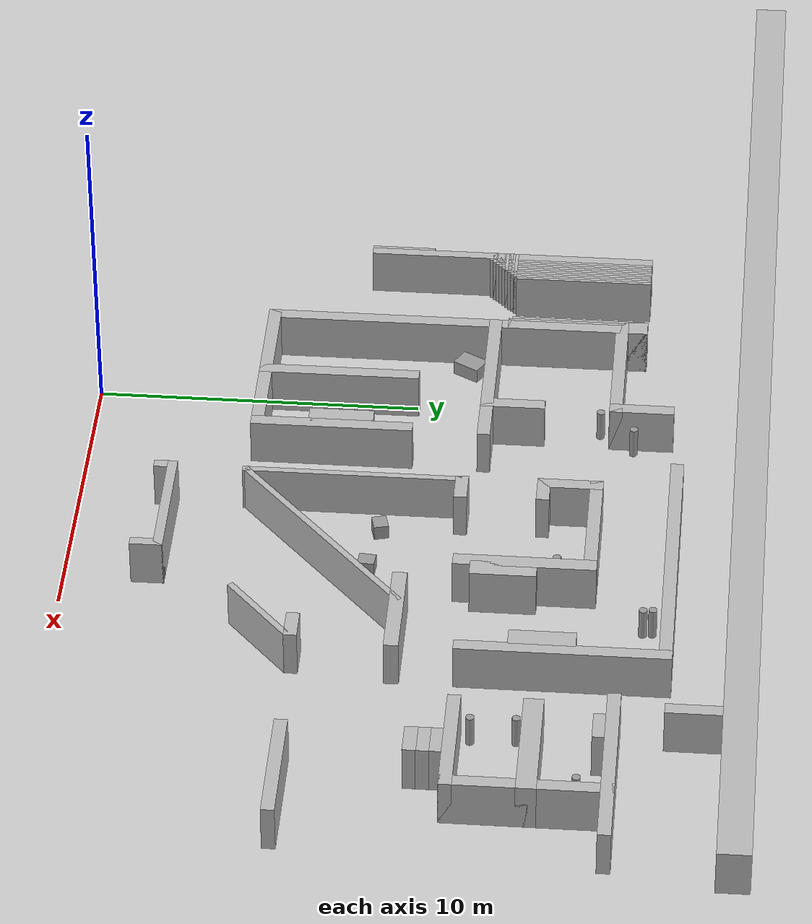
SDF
<sdf version="1.7">
 <world name="test_world">
  <model name="ground_plane">
   <static>1</static>
   <link name="link">
    <collision name="collision">
     <geometry><plane><normal>0 0 1</normal><size>100 100</size></plane></geometry>
    </collision>
    <visual name="visual">
     <geometry><plane><normal>0 0 1</normal><size>100 100</size></plane></geometry>
     <material>
      <script>
       <uri>file://media/materials/scripts/gazebo.material</uri>
       <name>__default__</name>
       <n>Gazebo/Grey</n>
      </script>
     </material>
    </visual>
   </link>
  </model>
  <model name="outer_top">
   <static>1</static>
   <pose>0 20.5 0.75 0 -0 0</pose>
   <link name="link">
    <collision name="collision"><geometry><box><size>42 1 1.5</size></box></geometry></collision>
    <visual name="visual">
     <geometry><box><size>42 1 1.5</size></box></geometry>
     <material>
      <script>
       <uri>file://media/materials/scripts/gazebo.material</uri>
       <name>__default__</name>
       <n>Gazebo/Grey</n>
      </script>
     </material>
    </visual>
   </link>
  </model>
  <model name="hw_12">
   <static>1</static>
   <pose>-6.15 11.9 0.75 0 -0 0</pose>
   <link name="link">
    <collision name="collision"><geometry><box><size>0.4 0.1 1.5</size></box></geometry></collision>
    <visual name="visual">
     <geometry><box><size>0.4 0.1 1.5</size></box></geometry>
     <material>
      <script>
       <uri>file://media/materials/scripts/gazebo.material</uri>
       <name>__default__</name>
       <n>Gazebo/Grey</n>
      </script>
     </material>
    </visual>
   </link>
  </model>
  <model name="hw_13">
   <static>1</static>
   <pose>-6.1 12 0.75 0 -0 0</pose>
   <link name="link">
    <collision name="collision"><geometry><box><size>0.5 0.1 1.5</size></box></geometry></collision>
    <visual name="visual">
     <geometry><box><size>0.5 0.1 1.5</size></box></geometry>
     <material>
      <script>
       <uri>file://media/materials/scripts/gazebo.material</uri>
       <name>__default__</name>
       <n>Gazebo/Grey</n>
      </script>
     </material>
    </visual>
   </link>
  </model>
  <model name="hw_14">
   <static>1</static>
   <pose>-6.05 12.1 0.75 0 -0 0</pose>
   <link name="link">
    <collision name="collision"><geometry><box><size>0.6 0.1 1.5</size></box></geometry></collision>
    <visual name="visual">
     <geometry><box><size>0.6 0.1 1.5</size></box></geometry>
     <material>
      <script>
       <uri>file://media/materials/scripts/gazebo.material</uri>
       <name>__default__</name>
       <n>Gazebo/Grey</n>
      </script>
     </material>
    </visual>
   </link>
  </model>
  <model name="hw_15">
   <static>1</static>
   <pose>-6 12.2 0.75 0 -0 0</pose>
   <link name="link">
    <collision name="collision"><geometry><box><size>0.7 0.1 1.5</size></box></geometry></collision>
    <visual name="visual">
     <geometry><box><size>0.7 0.1 1.5</size></box></geometry>
     <material>
      <script>
       <uri>file://media/materials/scripts/gazebo.material</uri>
       <name>__default__</name>
       <n>Gazebo/Grey</n>
      </script>
     </material>
    </visual>
   </link>
  </model>
  <model name="hw_16">
   <static>1</static>
   <pose>-5.95 12.3 0.75 0 -0 0</pose>
   <link name="link">
    <collision name="collision"><geometry><box><size>0.8 0.1 1.5</size></box></geometry></collision>
    <visual name="visual">
     <geometry><box><size>0.8 0.1 1.5</size></box></geometry>
     <material>
      <script>
       <uri>file://media/materials/scripts/gazebo.material</uri>
       <name>__default__</name>
       <n>Gazebo/Grey</n>
      </script>
     </material>
    </visual>
   </link>
  </model>
  <model name="hw_17">
   <static>1</static>
   <pose>-5.9 12.4 0.75 0 -0 0</pose>
   <link name="link">
    <collision name="collision"><geometry><box><size>0.9 0.1 1.5</size></box></geometry></collision>
    <visual name="visual">
     <geometry><box><size>0.9 0.1 1.5</size></box></geometry>
     <material>
      <script>
       <uri>file://media/materials/scripts/gazebo.material</uri>
       <name>__default__</name>
       <n>Gazebo/Grey</n>
      </script>
     </material>
    </visual>
   </link>
  </model>
  <model name="hw_18">
   <static>1</static>
   <pose>-5.85 12.5 0.75 0 -0 0</pose>
   <link name="link">
    <collision name="collision"><geometry><box><size>1 0.1 1.5</size></box></geometry></collision>
    <visual name="visual">
     <geometry><box><size>1 0.1 1.5</size></box></geometry>
     <material>
      <script>
       <uri>file://media/materials/scripts/gazebo.material</uri>
       <name>__default__</name>
       <n>Gazebo/Grey</n>
      </script>
     </material>
    </visual>
   </link>
  </model>
  <model name="hw_19">
   <static>1</static>
   <pose>-5.8 12.6 0.75 0 -0 0</pose>
   <link name="link">
    <collision name="collision"><geometry><box><size>1.1 0.1 1.5</size></box></geometry></collision>
    <visual name="visual">
     <geometry><box><size>1.1 0.1 1.5</size></box></geometry>
     <material>
      <script>
       <uri>file://media/materials/scripts/gazebo.material</uri>
       <name>__default__</name>
       <n>Gazebo/Grey</n>
      </script>
     </material>
    </visual>
   </link>
  </model>
  <model name="hw_20">
   <static>1</static>
   <pose>-5.75 12.7 0.75 0 -0 0</pose>
   <link name="link">
    <collision name="collision"><geometry><box><size>1.2 0.1 1.5</size></box></geometry></collision>
    <visual name="visual">
     <geometry><box><size>1.2 0.1 1.5</size></box></geometry>
     <material>
      <script>
       <uri>file://media/materials/scripts/gazebo.material</uri>
       <name>__default__</name>
       <n>Gazebo/Grey</n>
      </script>
     </material>
    </visual>
   </link>
  </model>
  <model name="hw_21">
   <static>1</static>
   <pose>-2.75 16.75 0.75 0 -0 0</pose>
   <link name="link">
    <collision name="collision"><geometry><box><size>0.6 0.6 1.5</size></box></geometry></collision>
    <visual name="visual">
     <geometry><box><size>0.6 0.6 1.5</size></box></geometry>
     <material>
      <script>
       <uri>file://media/materials/scripts/gazebo.material</uri>
       <name>__default__</name>
       <n>Gazebo/Grey</n>
      </script>
     </material>
    </visual>
   </link>
  </model>
  <model name="hw_22">
   <static>1</static>
   <pose>-0.75 16.25 0.75 0 -0 0</pose>
   <link name="link">
    <collision name="collision"><geometry><box><size>4.6 0.4 1.5</size></box></geometry></collision>
    <visual name="visual">
     <geometry><box><size>4.6 0.4 1.5</size></box></geometry>
     <material>
      <script>
       <uri>file://media/materials/scripts/gazebo.material</uri>
       <name>__default__</name>
       <n>Gazebo/Grey</n>
      </script>
     </material>
    </visual>
   </link>
  </model>
  <model name="hw_26">
   <static>1</static>
   <pose>-2.7 12.7 0.75 0 -0 0</pose>
   <link name="link">
    <collision name="collision"><geometry><box><size>0.5 0.1 1.5</size></box></geometry></collision>
    <visual name="visual">
     <geometry><box><size>0.5 0.1 1.5</size></box></geometry>
     <material>
      <script>
       <uri>file://media/materials/scripts/gazebo.material</uri>
       <name>__default__</name>
       <n>Gazebo/Grey</n>
      </script>
     </material>
    </visual>
   </link>
  </model>
  <model name="hw_27">
   <static>1</static>
   <pose>-2.65 12.55 0.75 0 -0 0</pose>
   <link name="link">
    <collision name="collision"><geometry><box><size>0.4 0.2 1.5</size></box></geometry></collision>
    <visual name="visual">
     <geometry><box><size>0.4 0.2 1.5</size></box></geometry>
     <material>
      <script>
       <uri>file://media/materials/scripts/gazebo.material</uri>
       <name>__default__</name>
       <n>Gazebo/Grey</n>
      </script>
     </material>
    </visual>
   </link>
  </model>
  <model name="hw_28">
   <static>1</static>
   <pose>0.05 12.25 0.75 0 -0 0</pose>
   <link name="link">
    <collision name="collision"><geometry><box><size>5.8 0.4 1.5</size></box></geometry></collision>
    <visual name="visual">
     <geometry><box><size>5.8 0.4 1.5</size></box></geometry>
     <material>
      <script>
       <uri>file://media/materials/scripts/gazebo.material</uri>
       <name>__default__</name>
       <n>Gazebo/Grey</n>
      </script>
     </material>
    </visual>
   </link>
  </model>
  <model name="hw_29">
   <static>1</static>
   <pose>0.05 5.25 0.75 0 -0 0</pose>
   <link name="link">
    <collision name="collision"><geometry><box><size>5.8 0.4 1.5</size></box></geometry></collision>
    <visual name="visual">
     <geometry><box><size>5.8 0.4 1.5</size></box></geometry>
     <material>
      <script>
       <uri>file://media/materials/scripts/gazebo.material</uri>
       <name>__default__</name>
       <n>Gazebo/Grey</n>
      </script>
     </material>
    </visual>
   </link>
  </model>
  <model name="hw_32">
   <static>1</static>
   <pose>8.45 18.25 0.75 0 -0 0</pose>
   <link name="link">
    <collision name="collision"><geometry><box><size>9 0.4 1.5</size></box></geometry></collision>
    <visual name="visual">
     <geometry><box><size>9 0.4 1.5</size></box></geometry>
     <material>
      <script>
       <uri>file://media/materials/scripts/gazebo.material</uri>
       <name>__default__</name>
       <n>Gazebo/Grey</n>
      </script>
     </material>
    </visual>
   </link>
  </model>
  <model name="hw_46">
   <static>1</static>
   <pose>5.45 14.25 0.75 0 -0 0</pose>
   <link name="link">
    <collision name="collision"><geometry><box><size>1 0.4 1.5</size></box></geometry></collision>
    <visual name="visual">
     <geometry><box><size>1 0.4 1.5</size></box></geometry>
     <material>
      <script>
       <uri>file://media/materials/scripts/gazebo.material</uri>
       <name>__default__</name>
       <n>Gazebo/Grey</n>
      </script>
     </material>
    </visual>
   </link>
  </model>
  <model name="hw_47">
   <static>1</static>
   <pose>6.95 2.9 0.75 0 -0 0</pose>
   <link name="link">
    <collision name="collision"><geometry><box><size>4 0.3 1.5</size></box></geometry></collision>
    <visual name="visual">
     <geometry><box><size>4 0.3 1.5</size></box></geometry>
     <material>
      <script>
       <uri>file://media/materials/scripts/gazebo.material</uri>
       <name>__default__</name>
       <n>Gazebo/Grey</n>
      </script>
     </material>
    </visual>
   </link>
  </model>
  <model name="hw_52">
   <static>1</static>
   <pose>7 15.85 0.75 0 -0 0</pose>
   <link name="link">
    <collision name="collision"><geometry><box><size>4.1 0.4 1.5</size></box></geometry></collision>
    <visual name="visual">
     <geometry><box><size>4.1 0.4 1.5</size></box></geometry>
     <material>
      <script>
       <uri>file://media/materials/scripts/gazebo.material</uri>
       <name>__default__</name>
       <n>Gazebo/Grey</n>
      </script>
     </material>
    </visual>
   </link>
  </model>
  <model name="hw_121">
   <static>1</static>
   <pose>11.3 10.2356 0.75 0 -0 0</pose>
   <link name="link">
    <collision name="collision"><geometry><box><size>3.3 0.447718 1.5</size></box></geometry></collision>
    <visual name="visual">
     <geometry><box><size>3.3 0.447718 1.5</size></box></geometry>
     <material>
      <script>
       <uri>file://media/materials/scripts/gazebo.material</uri>
       <name>__default__</name>
       <n>Gazebo/Grey</n>
      </script>
     </material>
    </visual>
   </link>
  </model>
  <model name="hw_125">
   <static>1</static>
   <pose>17.5122 16.85 0.75 0 -0 0</pose>
   <link name="link">
    <collision name="collision"><geometry><box><size>5.93657 0.4 1.5</size></box></geometry></collision>
    <visual name="visual">
     <geometry><box><size>5.93657 0.4 1.5</size></box></geometry>
     <material>
      <script>
       <uri>file://media/materials/scripts/gazebo.material</uri>
       <name>__default__</name>
       <n>Gazebo/Grey</n>
      </script>
     </material>
    </visual>
   </link>
  </model>
  <model name="hw_126">
   <static>1</static>
   <pose>16.85 14.55 0.75 0 -0 0</pose>
   <link name="link">
    <collision name="collision"><geometry><box><size>3.8 0.6 1.5</size></box></geometry></collision>
    <visual name="visual">
     <geometry><box><size>3.8 0.6 1.5</size></box></geometry>
     <material>
      <script>
       <uri>file://media/materials/scripts/gazebo.material</uri>
       <name>__default__</name>
       <n>Gazebo/Grey</n>
      </script>
     </material>
    </visual>
   </link>
  </model>
  <model name="hw_127">
   <static>1</static>
   <pose>16.85 12.25 0.75 0 -0 0</pose>
   <link name="link">
    <collision name="collision"><geometry><box><size>3.8 0.4 1.5</size></box></geometry></collision>
    <visual name="visual">
     <geometry><box><size>3.8 0.4 1.5</size></box></geometry>
     <material>
      <script>
       <uri>file://media/materials/scripts/gazebo.material</uri>
       <name>__default__</name>
       <n>Gazebo/Grey</n>
      </script>
     </material>
    </visual>
   </link>
  </model>
  <model name="vw_133">
   <static>1</static>
   <pose>12.75 15.25 0.75 0 -0 0</pose>
   <link name="link">
    <collision name="collision"><geometry><box><size>0.4 6.4 1.5</size></box></geometry></collision>
    <visual name="visual">
     <geometry><box><size>0.4 6.4 1.5</size></box></geometry>
     <material>
      <script>
       <uri>file://media/materials/scripts/gazebo.material</uri>
       <name>__default__</name>
       <n>Gazebo/Grey</n>
      </script>
     </material>
    </visual>
   </link>
  </model>
  <model name="vw_134">
   <static>1</static>
   <pose>1.35 17.05 0.75 0 -0 0</pose>
   <link name="link">
    <collision name="collision"><geometry><box><size>0.4 2 1.5</size></box></geometry></collision>
    <visual name="visual">
     <geometry><box><size>0.4 2 1.5</size></box></geometry>
     <material>
      <script>
       <uri>file://media/materials/scripts/gazebo.material</uri>
       <name>__default__</name>
       <n>Gazebo/Grey</n>
      </script>
     </material>
    </visual>
   </link>
  </model>
  <model name="vw_135">
   <static>1</static>
   <pose>-5.1 14.9 0.75 0 -0 0</pose>
   <link name="link">
    <collision name="collision"><geometry><box><size>0.1 4.3 1.5</size></box></geometry></collision>
    <visual name="visual">
     <geometry><box><size>0.1 4.3 1.5</size></box></geometry>
     <material>
      <script>
       <uri>file://media/materials/scripts/gazebo.material</uri>
       <name>__default__</name>
       <n>Gazebo/Grey</n>
      </script>
     </material>
    </visual>
   </link>
  </model>
  <model name="vw_136">
   <static>1</static>
   <pose>-3 14.9 0.75 0 -0 0</pose>
   <link name="link">
    <collision name="collision"><geometry><box><size>0.1 4.3 1.5</size></box></geometry></collision>
    <visual name="visual">
     <geometry><box><size>0.1 4.3 1.5</size></box></geometry>
     <material>
      <script>
       <uri>file://media/materials/scripts/gazebo.material</uri>
       <name>__default__</name>
       <n>Gazebo/Grey</n>
      </script>
     </material>
    </visual>
   </link>
  </model>
  <model name="vw_137">
   <static>1</static>
   <pose>-5.2 14.85 0.75 0 -0 0</pose>
   <link name="link">
    <collision name="collision"><geometry><box><size>0.1 4.4 1.5</size></box></geometry></collision>
    <visual name="visual">
     <geometry><box><size>0.1 4.4 1.5</size></box></geometry>
     <material>
      <script>
       <uri>file://media/materials/scripts/gazebo.material</uri>
       <name>__default__</name>
       <n>Gazebo/Grey</n>
      </script>
     </material>
    </visual>
   </link>
  </model>
  <model name="vw_138">
   <static>1</static>
   <pose>-2.9 14.85 0.75 0 -0 0</pose>
   <link name="link">
    <collision name="collision"><geometry><box><size>0.1 4.4 1.5</size></box></geometry></collision>
    <visual name="visual">
     <geometry><box><size>0.1 4.4 1.5</size></box></geometry>
     <material>
      <script>
       <uri>file://media/materials/scripts/gazebo.material</uri>
       <name>__default__</name>
       <n>Gazebo/Grey</n>
      </script>
     </material>
    </visual>
   </link>
  </model>
  <model name="vw_139">
   <static>1</static>
   <pose>-5.3 14.8 0.75 0 -0 0</pose>
   <link name="link">
    <collision name="collision"><geometry><box><size>0.1 4.5 1.5</size></box></geometry></collision>
    <visual name="visual">
     <geometry><box><size>0.1 4.5 1.5</size></box></geometry>
     <material>
      <script>
       <uri>file://media/materials/scripts/gazebo.material</uri>
       <name>__default__</name>
       <n>Gazebo/Grey</n>
      </script>
     </material>
    </visual>
   </link>
  </model>
  <model name="vw_140">
   <static>1</static>
   <pose>-5.4 14.75 0.75 0 -0 0</pose>
   <link name="link">
    <collision name="collision"><geometry><box><size>0.1 4.6 1.5</size></box></geometry></collision>
    <visual name="visual">
     <geometry><box><size>0.1 4.6 1.5</size></box></geometry>
     <material>
      <script>
       <uri>file://media/materials/scripts/gazebo.material</uri>
       <name>__default__</name>
       <n>Gazebo/Grey</n>
      </script>
     </material>
    </visual>
   </link>
  </model>
  <model name="vw_141">
   <static>1</static>
   <pose>-5.5 14.7 0.75 0 -0 0</pose>
   <link name="link">
    <collision name="collision"><geometry><box><size>0.1 4.7 1.5</size></box></geometry></collision>
    <visual name="visual">
     <geometry><box><size>0.1 4.7 1.5</size></box></geometry>
     <material>
      <script>
       <uri>file://media/materials/scripts/gazebo.material</uri>
       <name>__default__</name>
       <n>Gazebo/Grey</n>
      </script>
     </material>
    </visual>
   </link>
  </model>
  <model name="vw_142">
   <static>1</static>
   <pose>-5.6 14.65 0.75 0 -0 0</pose>
   <link name="link">
    <collision name="collision"><geometry><box><size>0.1 4.8 1.5</size></box></geometry></collision>
    <visual name="visual">
     <geometry><box><size>0.1 4.8 1.5</size></box></geometry>
     <material>
      <script>
       <uri>file://media/materials/scripts/gazebo.material</uri>
       <name>__default__</name>
       <n>Gazebo/Grey</n>
      </script>
     </material>
    </visual>
   </link>
  </model>
  <model name="vw_143">
   <static>1</static>
   <pose>-5.7 14.6 0.75 0 -0 0</pose>
   <link name="link">
    <collision name="collision"><geometry><box><size>0.1 4.9 1.5</size></box></geometry></collision>
    <visual name="visual">
     <geometry><box><size>0.1 4.9 1.5</size></box></geometry>
     <material>
      <script>
       <uri>file://media/materials/scripts/gazebo.material</uri>
       <name>__default__</name>
       <n>Gazebo/Grey</n>
      </script>
     </material>
    </visual>
   </link>
  </model>
  <model name="vw_144">
   <static>1</static>
   <pose>-5.8 14.55 0.75 0 -0 0</pose>
   <link name="link">
    <collision name="collision"><geometry><box><size>0.1 5 1.5</size></box></geometry></collision>
    <visual name="visual">
     <geometry><box><size>0.1 5 1.5</size></box></geometry>
     <material>
      <script>
       <uri>file://media/materials/scripts/gazebo.material</uri>
       <name>__default__</name>
       <n>Gazebo/Grey</n>
      </script>
     </material>
    </visual>
   </link>
  </model>
  <model name="vw_145">
   <static>1</static>
   <pose>18.55 14.55 0.75 0 -0 0</pose>
   <link name="link">
    <collision name="collision"><geometry><box><size>0.4 5 1.5</size></box></geometry></collision>
    <visual name="visual">
     <geometry><box><size>0.4 5 1.5</size></box></geometry>
     <material>
      <script>
       <uri>file://media/materials/scripts/gazebo.material</uri>
       <name>__default__</name>
       <n>Gazebo/Grey</n>
      </script>
     </material>
    </visual>
   </link>
  </model>
  <model name="vw_146">
   <static>1</static>
   <pose>-5.9 14.5 0.75 0 -0 0</pose>
   <link name="link">
    <collision name="collision"><geometry><box><size>0.1 5.1 1.5</size></box></geometry></collision>
    <visual name="visual">
     <geometry><box><size>0.1 5.1 1.5</size></box></geometry>
     <material>
      <script>
       <uri>file://media/materials/scripts/gazebo.material</uri>
       <name>__default__</name>
       <n>Gazebo/Grey</n>
      </script>
     </material>
    </visual>
   </link>
  </model>
  <model name="vw_147">
   <static>1</static>
   <pose>-6 14.45 0.75 0 -0 0</pose>
   <link name="link">
    <collision name="collision"><geometry><box><size>0.1 5.2 1.5</size></box></geometry></collision>
    <visual name="visual">
     <geometry><box><size>0.1 5.2 1.5</size></box></geometry>
     <material>
      <script>
       <uri>file://media/materials/scripts/gazebo.material</uri>
       <name>__default__</name>
       <n>Gazebo/Grey</n>
      </script>
     </material>
    </visual>
   </link>
  </model>
  <model name="vw_148">
   <static>1</static>
   <pose>-6.2 12.55 0.75 0 -0 0</pose>
   <link name="link">
    <collision name="collision"><geometry><box><size>0.3 9 1.5</size></box></geometry></collision>
    <visual name="visual">
     <geometry><box><size>0.3 9 1.5</size></box></geometry>
     <material>
      <script>
       <uri>file://media/materials/scripts/gazebo.material</uri>
       <name>__default__</name>
       <n>Gazebo/Grey</n>
      </script>
     </material>
    </visual>
   </link>
  </model>
  <model name="vw_149">
   <static>1</static>
   <pose>-2.65 11.05 0.75 0 -0 0</pose>
   <link name="link">
    <collision name="collision"><geometry><box><size>0.4 12 1.5</size></box></geometry></collision>
    <visual name="visual">
     <geometry><box><size>0.4 12 1.5</size></box></geometry>
     <material>
      <script>
       <uri>file://media/materials/scripts/gazebo.material</uri>
       <name>__default__</name>
       <n>Gazebo/Grey</n>
      </script>
     </material>
    </visual>
   </link>
  </model>
  <model name="vw_150">
   <static>1</static>
   <pose>5.15 15.05 0.75 0 -0 0</pose>
   <link name="link">
    <collision name="collision"><geometry><box><size>0.4 2 1.5</size></box></geometry></collision>
    <visual name="visual">
     <geometry><box><size>0.4 2 1.5</size></box></geometry>
     <material>
      <script>
       <uri>file://media/materials/scripts/gazebo.material</uri>
       <name>__default__</name>
       <n>Gazebo/Grey</n>
      </script>
     </material>
    </visual>
   </link>
  </model>
  <model name="vw_152">
   <static>1</static>
   <pose>8.9 13.9 0.75 0 -0 0</pose>
   <link name="link">
    <collision name="collision"><geometry><box><size>0.463946 4.3 1.5</size></box></geometry></collision>
    <visual name="visual">
     <geometry><box><size>0.463946 4.3 1.5</size></box></geometry>
     <material>
      <script>
       <uri>file://media/materials/scripts/gazebo.material</uri>
       <name>__default__</name>
       <n>Gazebo/Grey</n>
      </script>
     </material>
    </visual>
   </link>
  </model>
  <model name="vw_157">
   <static>1</static>
   <pose>1.35 13.05 0.75 0 -0 0</pose>
   <link name="link">
    <collision name="collision"><geometry><box><size>0.4 2 1.5</size></box></geometry></collision>
    <visual name="visual">
     <geometry><box><size>0.4 2 1.5</size></box></geometry>
     <material>
      <script>
       <uri>file://media/materials/scripts/gazebo.material</uri>
       <name>__default__</name>
       <n>Gazebo/Grey</n>
      </script>
     </material>
    </visual>
   </link>
  </model>
  <model name="vw_163">
   <static>1</static>
   <pose>5.14006 8.4 0.75 0 -0 0</pose>
   <link name="link">
    <collision name="collision"><geometry><box><size>0.2 6.7 1.5</size></box></geometry></collision>
    <visual name="visual">
     <geometry><box><size>0.2 6.7 1.5</size></box></geometry>
     <material>
      <script>
       <uri>file://media/materials/scripts/gazebo.material</uri>
       <name>__default__</name>
       <n>Gazebo/Grey</n>
      </script>
     </material>
    </visual>
   </link>
  </model>
  <model name="vw_180">
   <static>1</static>
   <pose>-6.4 9.05 0.75 0 -0 0</pose>
   <link name="link">
    <collision name="collision"><geometry><box><size>0.1 2 1.5</size></box></geometry></collision>
    <visual name="visual">
     <geometry><box><size>0.1 2 1.5</size></box></geometry>
     <material>
      <script>
       <uri>file://media/materials/scripts/gazebo.material</uri>
       <name>__default__</name>
       <n>Gazebo/Grey</n>
      </script>
     </material>
    </visual>
   </link>
  </model>
  <model name="vw_182">
   <static>1</static>
   <pose>0.15 7.55 0.75 0 -0 0</pose>
   <link name="link">
    <collision name="collision"><geometry><box><size>0.4 5 1.5</size></box></geometry></collision>
    <visual name="visual">
     <geometry><box><size>0.4 5 1.5</size></box></geometry>
     <material>
      <script>
       <uri>file://media/materials/scripts/gazebo.material</uri>
       <name>__default__</name>
       <n>Gazebo/Grey</n>
      </script>
     </material>
    </visual>
   </link>
  </model>
  <model name="vw_183">
   <static>1</static>
   <pose>2.75 7.55 0.75 0 -0 0</pose>
   <link name="link">
    <collision name="collision"><geometry><box><size>0.4 5 1.5</size></box></geometry></collision>
    <visual name="visual">
     <geometry><box><size>0.4 5 1.5</size></box></geometry>
     <material>
      <script>
       <uri>file://media/materials/scripts/gazebo.material</uri>
       <name>__default__</name>
       <n>Gazebo/Grey</n>
      </script>
     </material>
    </visual>
   </link>
  </model>
  <model name="vw_226">
   <static>1</static>
   <pose>5.1 2.55 0.75 0 -0 0</pose>
   <link name="link">
    <collision name="collision"><geometry><box><size>0.3 0.433491 1.5</size></box></geometry></collision>
    <visual name="visual">
     <geometry><box><size>0.3 0.433491 1.5</size></box></geometry>
     <material>
      <script>
       <uri>file://media/materials/scripts/gazebo.material</uri>
       <name>__default__</name>
       <n>Gazebo/Grey</n>
      </script>
     </material>
    </visual>
   </link>
  </model>
  <model name="vw_227">
   <static>1</static>
   <pose>8.8 2.55 0.75 0 -0 0</pose>
   <link name="link">
    <collision name="collision"><geometry><box><size>0.3 1 1.5</size></box></geometry></collision>
    <visual name="visual">
     <geometry><box><size>0.3 1 1.5</size></box></geometry>
     <material>
      <script>
       <uri>file://media/materials/scripts/gazebo.material</uri>
       <name>__default__</name>
       <n>Gazebo/Grey</n>
      </script>
     </material>
    </visual>
   </link>
  </model>
  <model name="diagonal_wall">
   <static>1</static>
   <pose>8.01781 7.73019 0.75 0 -0 0.729246</pose>
   <link name="link">
    <collision name="collision"><geometry><box><size>7.73029 0.2 1.5</size></box></geometry></collision>
    <visual name="visual">
     <geometry><box><size>7.73029 0.2 1.5</size></box></geometry>
     <material>
      <script>
       <uri>file://media/materials/scripts/gazebo.material</uri>
       <name>__default__</name>
       <n>Gazebo/Grey</n>
      </script>
     </material>
    </visual>
   </link>
  </model>
  <model name="hw_46_clone">
   <static>1</static>
   <pose>5.51512 11.757 0.75 0 -0 0</pose>
   <link name="link">
    <collision name="collision"><geometry><box><size>1 0.4 1.5</size></box></geometry></collision>
    <visual name="visual">
     <geometry><box><size>1 0.4 1.5</size></box></geometry>
     <material>
      <script>
       <uri>file://media/materials/scripts/gazebo.material</uri>
       <name>__default__</name>
       <n>Gazebo/Grey</n>
      </script>
     </material>
    </visual>
   </link>
  </model>
  <model name="hw_127_clone">
   <static>1</static>
   <pose>18.2761 7.37466 0.75 0 -0 0</pose>
   <link name="link">
    <collision name="collision"><geometry><box><size>3.8 0.4 1.5</size></box></geometry></collision>
    <visual name="visual">
     <geometry><box><size>3.8 0.4 1.5</size></box></geometry>
     <material>
      <script>
       <uri>file://media/materials/scripts/gazebo.material</uri>
       <name>__default__</name>
       <n>Gazebo/Grey</n>
      </script>
     </material>
    </visual>
   </link>
  </model>
  <model name="vw_145_clone">
   <static>1</static>
   <pose>15.0647 19.3267 0.75 0 -0 0</pose>
   <link name="link">
    <collision name="collision"><geometry><box><size>0.4 2.01045 1.5</size></box></geometry></collision>
    <visual name="visual">
     <geometry><box><size>0.4 2.01045 1.5</size></box></geometry>
     <material>
      <script>
       <uri>file://media/materials/scripts/gazebo.material</uri>
       <name>__default__</name>
       <n>Gazebo/Grey</n>
      </script>
     </material>
    </visual>
   </link>
  </model>
  <model name="vw_258_clone_1">
   <static>1</static>
   <pose>2.35806 7.81578 0.75 0 -0 0</pose>
   <link name="link">
    <collision name="collision"><geometry><box><size>0.6 2 1.5</size></box></geometry></collision>
    <visual name="visual">
     <geometry><box><size>0.6 2 1.5</size></box></geometry>
     <material>
      <script>
       <uri>file://media/materials/scripts/gazebo.material</uri>
       <name>__default__</name>
       <n>Gazebo/Grey</n>
      </script>
     </material>
    </visual>
   </link>
  </model>
  <model name="vw_258_clone_2">
   <static>1</static>
   <pose>12.2864 14.6231 0.75 0 -0 0</pose>
   <link name="link">
    <collision name="collision"><geometry><box><size>0.6 2 1.5</size></box></geometry></collision>
    <visual name="visual">
     <geometry><box><size>0.6 2 1.5</size></box></geometry>
     <material>
      <script>
       <uri>file://media/materials/scripts/gazebo.material</uri>
       <name>__default__</name>
       <n>Gazebo/Grey</n>
      </script>
     </material>
    </visual>
   </link>
  </model>
  <model name="vw_258_clone_3">
   <static>1</static>
   <pose>9.24601 13.2809 0.75 0 -0 0</pose>
   <link name="link">
    <collision name="collision"><geometry><box><size>0.6 2 1.5</size></box></geometry></collision>
    <visual name="visual">
     <geometry><box><size>0.6 2 1.5</size></box></geometry>
     <material>
      <script>
       <uri>file://media/materials/scripts/gazebo.material</uri>
       <name>__default__</name>
       <n>Gazebo/Grey</n>
      </script>
     </material>
    </visual>
   </link>
  </model>
  <model name="diagonal_wall_clone">
   <static>1</static>
   <pose>11.5984 6.19979 0.75 0 -0 0.729246</pose>
   <link name="link">
    <collision name="collision"><geometry><box><size>2.8087 0.2 1.5</size></box></geometry></collision>
    <visual name="visual">
     <geometry><box><size>2.8087 0.2 1.5</size></box></geometry>
     <material>
      <script>
       <uri>file://media/materials/scripts/gazebo.material</uri>
       <name>__default__</name>
       <n>Gazebo/Grey</n>
      </script>
     </material>
    </visual>
   </link>
  </model>
  <model name="unit_cylinder_clone_3_clone_9">
   <pose>8.02451 14.8219 0.49999 -0 -0 -5.5e-05</pose>
   <link name="link">
    <inertial>
     <mass>1</mass>
     <inertia><ixx>0.145833</ixx><ixy>0</ixy><ixz>0</ixz><iyy>0.145833</iyy><iyz>0</iyz><izz>0.125</izz></inertia>
    </inertial>
    <collision name="collision">
     <geometry><cylinder><radius>0.124927</radius><length>1</length></cylinder></geometry>
    </collision>
    <visual name="visual">
     <geometry><cylinder><radius>0.124927</radius><length>1</length></cylinder></geometry>
     <material>
      <script><name>Gazebo/Grey</name><uri>file://media/materials/scripts/gazebo.material</uri></script>
     </material>
    </visual>
   </link>
  </model>
  <model name="unit_cylinder_clone_3_clone_10">
   <pose>10.2157 17.7883 0.499999 0 0 -5.3e-05</pose>
   <link name="link">
    <inertial>
     <mass>1</mass>
     <inertia><ixx>0.145833</ixx><ixy>0</ixy><ixz>0</ixz><iyy>0.145833</iyy><iyz>0</iyz><izz>0.125</izz></inertia>
    </inertial>
    <collision name="collision">
     <geometry><cylinder><radius>0.124927</radius><length>1</length></cylinder></geometry>
    </collision>
    <visual name="visual">
     <geometry><cylinder><radius>0.124927</radius><length>1</length></cylinder></geometry>
     <material>
      <script><name>Gazebo/Grey</name><uri>file://media/materials/scripts/gazebo.material</uri></script>
     </material>
    </visual>
   </link>
  </model>
  <model name="unit_cylinder_clone_3_clone_11">
   <pose>10.2458 17.5024 0.499999 0 0 -5.3e-05</pose>
   <link name="link">
    <inertial>
     <mass>1</mass>
     <inertia><ixx>0.145833</ixx><ixy>0</ixy><ixz>0</ixz><iyy>0.145833</iyy><iyz>0</iyz><izz>0.125</izz></inertia>
    </inertial>
    <collision name="collision">
     <geometry><cylinder><radius>0.124927</radius><length>1</length></cylinder></geometry>
    </collision>
    <visual name="visual">
     <geometry><cylinder><radius>0.124927</radius><length>1</length></cylinder></geometry>
     <material>
      <script><name>Gazebo/Grey</name><uri>file://media/materials/scripts/gazebo.material</uri></script>
     </material>
    </visual>
   </link>
  </model>
  <model name="unit_cylinder_clone_3_clone_12">
   <pose>1.73497 16.8342 0.499999 0 0 -5.3e-05</pose>
   <link name="link">
    <inertial>
     <mass>1</mass>
     <inertia><ixx>0.145833</ixx><ixy>0</ixy><ixz>0</ixz><iyy>0.145833</iyy><iyz>0</iyz><izz>0.125</izz></inertia>
    </inertial>
    <collision name="collision">
     <geometry><cylinder><radius>0.124927</radius><length>1</length></cylinder></geometry>
    </collision>
    <visual name="visual">
     <geometry><cylinder><radius>0.124927</radius><length>1</length></cylinder></geometry>
     <material>
      <script><name>Gazebo/Grey</name><uri>file://media/materials/scripts/gazebo.material</uri></script>
     </material>
    </visual>
   </link>
  </model>
  <model name="unit_cylinder_clone_3_clone_13">
   <pose>0.965894 15.778 0.5 0 0 -5.4e-05</pose>
   <link name="link">
    <inertial>
     <mass>1</mass>
     <inertia><ixx>0.145833</ixx><ixy>0</ixy><ixz>0</ixz><iyy>0.145833</iyy><iyz>0</iyz><izz>0.125</izz></inertia>
    </inertial>
    <collision name="collision">
     <geometry><cylinder><radius>0.124927</radius><length>1</length></cylinder></geometry>
    </collision>
    <visual name="visual">
     <geometry><cylinder><radius>0.124927</radius><length>1</length></cylinder></geometry>
     <material>
      <script><name>Gazebo/Grey</name><uri>file://media/materials/scripts/gazebo.material</uri></script>
     </material>
    </visual>
   </link>
  </model>
  <model name="unit_cylinder_clone_3_clone_14">
   <pose>4.69635 15.0772 0.49999 -0 -0 -5.4e-05</pose>
   <link name="link">
    <inertial>
     <mass>1</mass>
     <inertia><ixx>0.145833</ixx><ixy>0</ixy><ixz>0</ixz><iyy>0.145833</iyy><iyz>0</iyz><izz>0.125</izz></inertia>
    </inertial>
    <collision name="collision">
     <geometry><cylinder><radius>0.124927</radius><length>1</length></cylinder></geometry>
    </collision>
    <visual name="visual">
     <geometry><cylinder><radius>0.124927</radius><length>1</length></cylinder></geometry>
     <material>
      <script><name>Gazebo/Grey</name><uri>file://media/materials/scripts/gazebo.material</uri></script>
     </material>
    </visual>
   </link>
  </model>
  <model name="unit_box_0_clone_clone_clone_3">
   <pose>-1.96455 11.5168 0.235786 -0 -0 -0.514441</pose>
   <link name="link">
    <inertial>
     <mass>1</mass>
     <inertia>
      <ixx>0.166667</ixx>
      <ixy>0</ixy>
      <ixz>0</ixz>
      <iyy>0.166667</iyy>
      <iyz>0</iyz>
      <izz>0.166667</izz>
     </inertia>
    </inertial>
    <collision name="collision">
     <geometry><box><size>0.621247 0.873878 0.471572</size></box></geometry>
    </collision>
    <visual name="visual">
     <geometry><box><size>0.621247 0.873878 0.471572</size></box></geometry>
     <material>
      <script><name>Gazebo/Grey</name><uri>file://media/materials/scripts/gazebo.material</uri></script>
     </material>
    </visual>
   </link>
  </model>
  <model name="unit_box_0_clone_clone_clone_4">
   <pose>7.90076 9.08123 0.235786 0 -0 -0.087134</pose>
   <link name="link">
    <inertial>
     <mass>1</mass>
     <inertia>
      <ixx>0.166667</ixx>
      <ixy>0</ixy>
      <ixz>0</ixz>
      <iyy>0.166667</iyy>
      <iyz>0</iyz>
      <izz>0.166667</izz>
     </inertia>
    </inertial>
    <collision name="collision">
     <geometry><box><size>0.450934 0.510983 0.471572</size></box></geometry>
    </collision>
    <visual name="visual">
     <geometry><box><size>0.450934 0.510983 0.471572</size></box></geometry>
     <material>
      <script><name>Gazebo/Grey</name><uri>file://media/materials/scripts/gazebo.material</uri></script>
     </material>
    </visual>
   </link>
  </model>
  <model name="unit_box_0_clone_clone_clone_6">
   <pose>6.13785 9.33263 0.235786 0 -0 -1.32576</pose>
   <link name="link">
    <inertial>
     <mass>1</mass>
     <inertia>
      <ixx>0.166667</ixx>
      <ixy>0</ixy>
      <ixz>0</ixz>
      <iyy>0.166667</iyy>
      <iyz>0</iyz>
      <izz>0.166667</izz>
     </inertia>
    </inertial>
    <collision name="collision">
     <geometry><box><size>0.450934 0.510983 0.471572</size></box></geometry>
    </collision>
    <visual name="visual">
     <geometry><box><size>0.450934 0.510983 0.471572</size></box></geometry>
     <material>
      <script><name>Gazebo/Grey</name><uri>file://media/materials/scripts/gazebo.material</uri></script>
     </material>
    </visual>
   </link>
  </model>
  <model name="unit_cylinder_clone_3_clone_11_clone">
   <pose>15.2698 14.0696 0.499999 0 0 -5.3e-05</pose>
   <link name="link">
    <inertial>
     <mass>1</mass>
     <inertia><ixx>0.145833</ixx><ixy>0</ixy><ixz>0</ixz><iyy>0.145833</iyy><iyz>0</iyz><izz>0.125</izz></inertia>
    </inertial>
    <collision name="collision">
     <geometry><cylinder><radius>0.124927</radius><length>1</length></cylinder></geometry>
    </collision>
    <visual name="visual">
     <geometry><cylinder><radius>0.124927</radius><length>1</length></cylinder></geometry>
     <material>
      <script><name>Gazebo/Grey</name><uri>file://media/materials/scripts/gazebo.material</uri></script>
     </material>
    </visual>
   </link>
  </model>
  <model name="unit_cylinder_clone_3_clone_11_clone_0">
   <pose>15.3267 12.7299 0.5 0 0 -5.3e-05</pose>
   <link name="link">
    <inertial>
     <mass>1</mass>
     <inertia><ixx>0.145833</ixx><ixy>0</ixy><ixz>0</ixz><iyy>0.145833</iyy><iyz>0</iyz><izz>0.125</izz></inertia>
    </inertial>
    <collision name="collision">
     <geometry><cylinder><radius>0.124927</radius><length>1</length></cylinder></geometry>
    </collision>
    <visual name="visual">
     <geometry><cylinder><radius>0.124927</radius><length>1</length></cylinder></geometry>
     <material>
      <script><name>Gazebo/Grey</name><uri>file://media/materials/scripts/gazebo.material</uri></script>
     </material>
    </visual>
   </link>
  </model>
  <model name="unit_cylinder_clone_3_clone_11_clone_1">
   <pose>17.6265 15.9242 0.499999 0 0 -5.2e-05</pose>
   <link name="link">
    <inertial>
     <mass>1</mass>
     <inertia><ixx>0.145833</ixx><ixy>0</ixy><ixz>0</ixz><iyy>0.145833</iyy><iyz>0</iyz><izz>0.125</izz></inertia>
    </inertial>
    <collision name="collision">
     <geometry><cylinder><radius>0.124927</radius><length>1</length></cylinder></geometry>
    </collision>
    <visual name="visual">
     <geometry><cylinder><radius>0.124927</radius><length>1</length></cylinder></geometry>
     <material>
      <script><name>Gazebo/Grey</name><uri>file://media/materials/scripts/gazebo.material</uri></script>
     </material>
    </visual>
   </link>
  </model>
  <model name="unit_cylinder_clone_3_clone_11_clone_2">
   <pose>14.5601 19.626 0.499991 0 -0 -5.3e-05</pose>
   <link name="link">
    <inertial>
     <mass>1</mass>
     <inertia><ixx>0.145833</ixx><ixy>0</ixy><ixz>0</ixz><iyy>0.145833</iyy><iyz>0</iyz><izz>0.125</izz></inertia>
    </inertial>
    <collision name="collision">
     <geometry><cylinder><radius>0.124927</radius><length>1</length></cylinder></geometry>
    </collision>
    <visual name="visual">
     <geometry><cylinder><radius>0.124927</radius><length>1</length></cylinder></geometry>
     <material>
      <script><name>Gazebo/Grey</name><uri>file://media/materials/scripts/gazebo.material</uri></script>
     </material>
    </visual>
   </link>
  </model>
  <model name="hw_46_clone_clone">
   <static>1</static>
   <pose>16.902 11.903 0.75 0 -0 0</pose>
   <link name="link">
    <collision name="collision"><geometry><box><size>1 0.4 1.5</size></box></geometry></collision>
    <visual name="visual">
     <geometry><box><size>1 0.4 1.5</size></box></geometry>
     <material>
      <script>
       <uri>file://media/materials/scripts/gazebo.material</uri>
       <name>__default__</name>
       <n>Gazebo/Grey</n>
      </script>
     </material>
    </visual>
   </link>
  </model>
  <model name="hw_46_clone_clone_0">
   <static>1</static>
   <pose>15.9487 16.4935 0.75 0 -0 0</pose>
   <link name="link">
    <collision name="collision"><geometry><box><size>1 0.4 1.5</size></box></geometry></collision>
    <visual name="visual">
     <geometry><box><size>1 0.4 1.5</size></box></geometry>
     <material>
      <script>
       <uri>file://media/materials/scripts/gazebo.material</uri>
       <name>__default__</name>
       <n>Gazebo/Grey</n>
      </script>
     </material>
    </visual>
   </link>
  </model>
  <model name="hw_46_clone_clone_1">
   <static>1</static>
   <pose>16.9039 11.5102 0.75 0 -0 0</pose>
   <link name="link">
    <collision name="collision"><geometry><box><size>1 0.4 1.5</size></box></geometry></collision>
    <visual name="visual">
     <geometry><box><size>1 0.4 1.5</size></box></geometry>
     <material>
      <script>
       <uri>file://media/materials/scripts/gazebo.material</uri>
       <name>__default__</name>
       <n>Gazebo/Grey</n>
      </script>
     </material>
    </visual>
   </link>
  </model>
  <model name="hw_46_clone_clone_2">
   <static>1</static>
   <pose>16.9029 11.13 0.75 0 -0 0</pose>
   <link name="link">
    <collision name="collision"><geometry><box><size>1 0.4 1.5</size></box></geometry></collision>
    <visual name="visual">
     <geometry><box><size>1 0.4 1.5</size></box></geometry>
     <material>
      <script>
       <uri>file://media/materials/scripts/gazebo.material</uri>
       <name>__default__</name>
       <n>Gazebo/Grey</n>
      </script>
     </material>
    </visual>
   </link>
  </model>
  <model name="hw_46_clone_clone_3">
   <static>1</static>
   <pose>12.2117 7.2566 0.75 0 -0 0</pose>
   <link name="link">
    <collision name="collision"><geometry><box><size>1 0.4 1.5</size></box></geometry></collision>
    <visual name="visual">
     <geometry><box><size>1 0.4 1.5</size></box></geometry>
     <material>
      <script>
       <uri>file://media/materials/scripts/gazebo.material</uri>
       <name>__default__</name>
       <n>Gazebo/Grey</n>
      </script>
     </material>
    </visual>
   </link>
  </model>
  <model name="unit_cylinder_clone_3_clone_clone_4">
   <pose>-3.05978 5.65343 0.499991 0 -0 -5.4e-05</pose>
   <link name="link">
    <inertial>
     <mass>1</mass>
     <inertia><ixx>0.145833</ixx><ixy>0</ixy><ixz>0</ixz><iyy>0.145833</iyy><iyz>0</iyz><izz>0.125</izz></inertia>
    </inertial>
    <collision name="collision">
     <geometry><cylinder><radius>0.124927</radius><length>1</length></cylinder></geometry>
    </collision>
    <visual name="visual">
     <geometry><cylinder><radius>0.124927</radius><length>1</length></cylinder></geometry>
     <material>
      <script><name>Gazebo/Grey</name><uri>file://media/materials/scripts/gazebo.material</uri></script>
     </material>
    </visual>
   </link>
  </model>
 </world>
</sdf>
